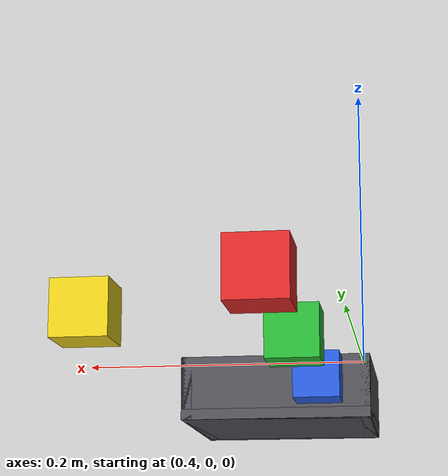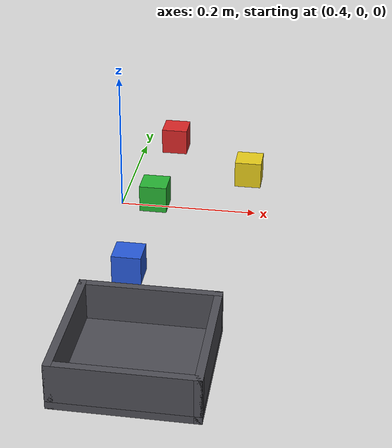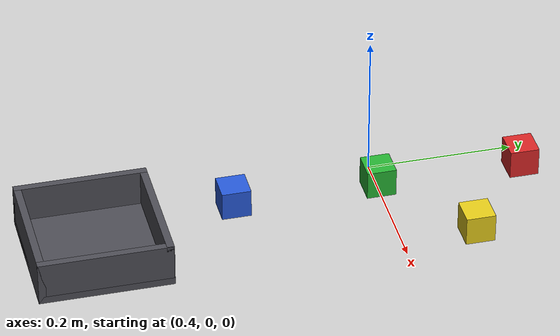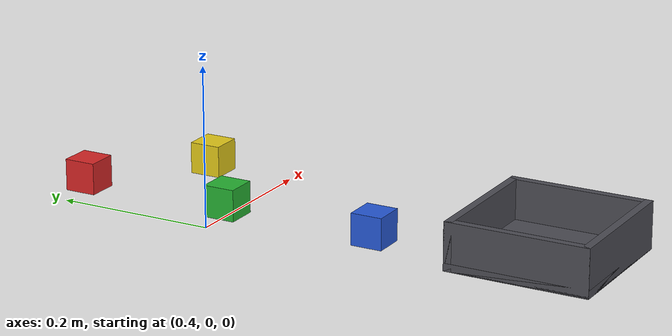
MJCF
<mujoco model="props">

  <asset>
    <material name="mat_block_red"    rgba="0.85 0.15 0.15 1"/>
    <material name="mat_block_green"  rgba="0.15 0.70 0.20 1"/>
    <material name="mat_block_blue"   rgba="0.15 0.35 0.85 1"/>
    <material name="mat_block_yellow" rgba="0.90 0.80 0.10 1"/>
    <material name="mat_bin"          rgba="0.30 0.30 0.33 1"/>
  </asset>

  <worldbody>
    <!-- Order here defines qpos order in the keyframe: red, green, blue, yellow. -->
    <body name="block_red" pos="0.45 0.20 0.021">
      <freejoint name="block_red_joint"/>
      <geom name="block_red_geom" type="box" size="0.02 0.02 0.02"
            material="mat_block_red" mass="0.05" condim="4"
            friction="1.0 0.02 0.001"/>
    </body>

    <body name="block_green" pos="0.45 0.00 0.021">
      <freejoint name="block_green_joint"/>
      <geom name="block_green_geom" type="box" size="0.02 0.02 0.02"
            material="mat_block_green" mass="0.05" condim="4"
            friction="1.0 0.02 0.001"/>
    </body>

    <body name="block_blue" pos="0.45 -0.20 0.021">
      <freejoint name="block_blue_joint"/>
      <geom name="block_blue_geom" type="box" size="0.02 0.02 0.02"
            material="mat_block_blue" mass="0.05" condim="4"
            friction="1.0 0.02 0.001"/>
    </body>

    <body name="block_yellow" pos="0.58 0.10 0.021">
      <freejoint name="block_yellow_joint"/>
      <geom name="block_yellow_geom" type="box" size="0.02 0.02 0.02"
            material="mat_block_yellow" mass="0.05" condim="4"
            friction="1.0 0.02 0.001"/>
    </body>

    <!-- Static target bin (shallow open tray). No joint -> contributes no qpos. -->
    <body name="bin" pos="0.50 -0.40 0.0">
      <geom name="bin_floor"   type="box" size="0.09  0.09  0.005" pos="0 0 0.005"    material="mat_bin"/>
      <geom name="bin_wall_px" type="box" size="0.005 0.09  0.03"  pos="0.085 0 0.03"  material="mat_bin"/>
      <geom name="bin_wall_nx" type="box" size="0.005 0.09  0.03"  pos="-0.085 0 0.03" material="mat_bin"/>
      <geom name="bin_wall_py" type="box" size="0.09  0.005 0.03"  pos="0 0.085 0.03"  material="mat_bin"/>
      <geom name="bin_wall_ny" type="box" size="0.09  0.005 0.03"  pos="0 -0.085 0.03" material="mat_bin"/>
    </body>
  </worldbody>
</mujoco>
